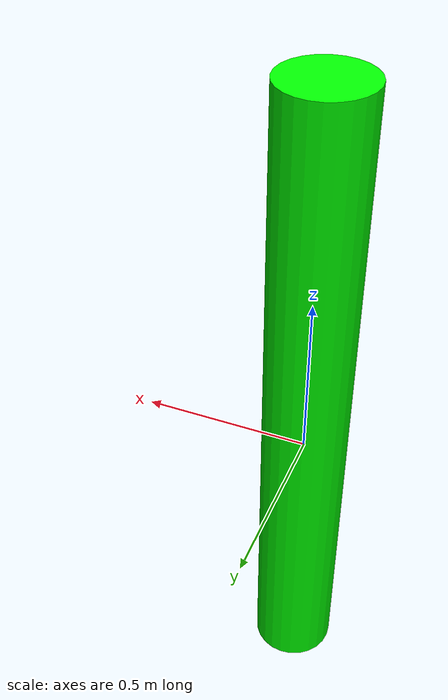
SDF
<?xml version="1.0" ?>
<sdf version="1.5">
  <model name="green_marker">
    <link name="link">
      <pose>0 0 0.115 0 0 1.57</pose>
      <inertial>
        <mass>0.4</mass>
        <inertia>
          <ixx>0.0677</ixx>
          <ixy>0</ixy>
          <ixz>0</ixz>
          <iyy>0.0677</iyy>
          <iyz>0</iyz>
          <izz>0.0677</izz>
        </inertia>
      </inertial>
      <collision name="collision">
          <geometry>
            <cylinder>
              <radius>0.127</radius>
              <length>2.0</length>
          </cylinder>
          </geometry>
      </collision>
      <visual name="visual">
          <geometry>
            <cylinder>
              <radius>0.127</radius>
              <length>2.0</length>
          </cylinder>
          </geometry>
        <material>
          <ambient>0.0 0.2 0.0 1.0</ambient>
          <diffuse>0.0 1.0 0.0 1.0</diffuse>
          <specular>0.8 0.8 0.8 0.8</specular>
          <emissive>0.0 0.0 0.0 1.0</emissive>
        </material>
      </visual>
    </link>
     <plugin name='usv_dynamics_plugin' filename='libusv_dynamics_plugin.so'>
      <bodyName>link</bodyName>
      <waterLevel>0</waterLevel>
      <waterDensity>997.8</waterDensity>
      <xDotU>0.0</xDotU>
      <yDotV>0.0</yDotV>
      <nDotR>0.0</nDotR>
      <xU>1.0</xU>
      <yV>1.0</yV>
      <zW>1.0</zW>
      <hullRadius>0.0381</hullRadius>
      <boatWidth>0.1</boatWidth>
      <boatLength>0.23</boatLength>
      <length_n>1.5</length_n>
      <wave_model>ocean_waves</wave_model>
    </plugin>
  </model>
</sdf>
